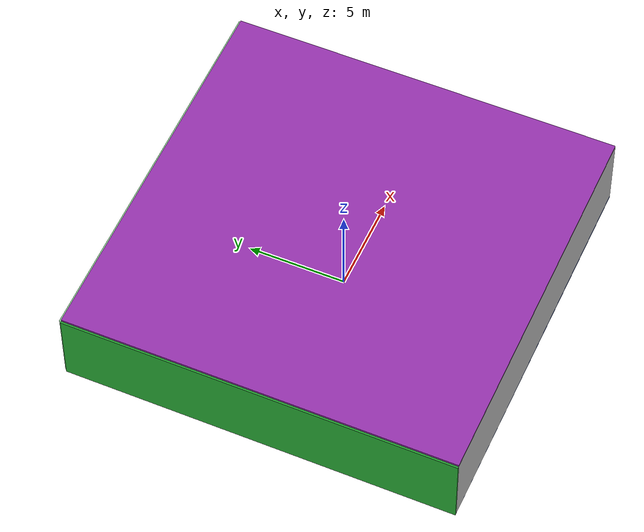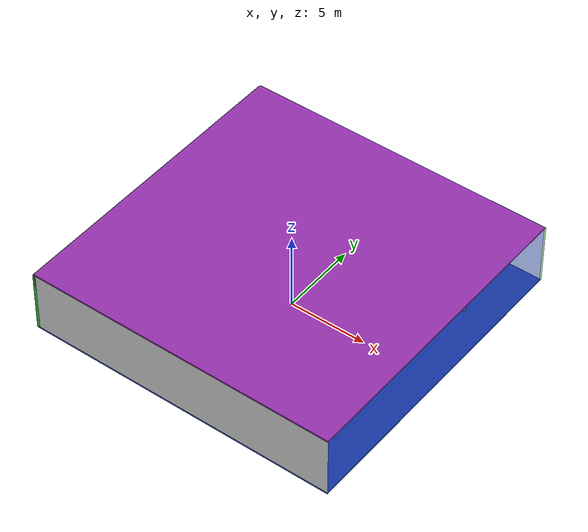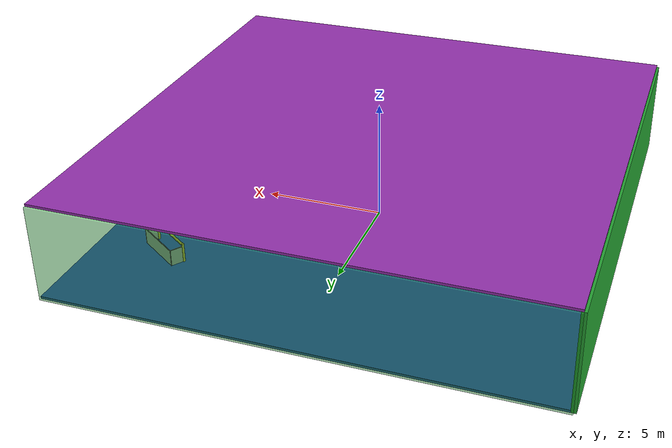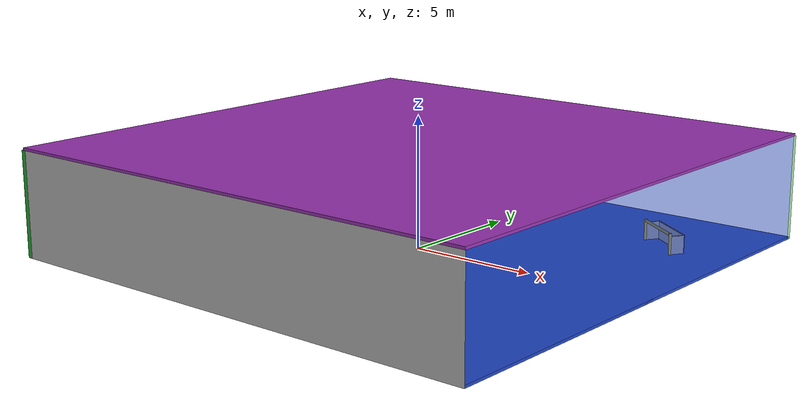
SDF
<sdf version="1.4">
 <world name="default">
  <physics type="ode">
   <max_step_size>0.001</max_step_size>
   <real_time_factor>1</real_time_factor>
   <real_time_update_rate>1000</real_time_update_rate>
   <gravity>0 0 -9.8</gravity>
  </physics>
  <scene><ambient>0.4 0.4 0.4 1</ambient><background>0.7 0.7 0.7 1</background><shadows>1</shadows></scene>
  <model name="Surrounding">
   <static>1</static>
   <link name="Ceiling">
    <collision name="Ceiling_Collision"><geometry><box><size>20 20 0.1</size></box></geometry></collision>
    <visual name="Ceiling_Visual">
     <geometry><box><size>20 20 0.1</size></box></geometry>
     <material>
      <script><uri>file://media/materials/scripts/gazebo.material</uri><name>Gazebo/Purple</name></script>
     </material>
    </visual>
    <pose>0 0 4.05 0 0 0</pose>
   </link>
   <link name="Wall_South">
    <collision name="Wall_South_Collision">
     <geometry><box><size>20 0 4</size></box></geometry>
     <pose>0 0 2 0 -0 0</pose>
    </collision>
    <visual name="Wall_South_Visual">
     <pose>0 0 2 0 -0 0</pose>
     <geometry><box><size>20 0 4</size></box></geometry>
     <material>
      <script><uri>file://media/materials/scripts/gazebo.material</uri><name>Gazebo/PioneerBody</name></script>
     </material>
    </visual>
    <velocity_decay><linear>0</linear><angular>0</angular></velocity_decay>
    <pose>0 -10 0 0 -0 0</pose>
   </link>
   <link name="Wall_East">
    <collision name="Wall_21_Collision">
     <geometry><box><size>20 0 4</size></box></geometry>
     <pose>0 0 2 0 -0 0</pose>
    </collision>
    <visual name="Wall_21_Visual">
     <pose>0 0 2 0 -0 0</pose>
     <geometry><box><size>20 0 4</size></box></geometry>
     <material>
      <script><uri>file://media/materials/scripts/gazebo.material</uri><name>Gazebo/BlueTransparent</name></script>
     </material>
    </visual>
    <velocity_decay><linear>0</linear><angular>0</angular></velocity_decay>
    <pose>10 0 0 0 -0 1.5708</pose>
   </link>
   <link name="Wall_North">
    <collision name="Wall_22_Collision">
     <geometry><box><size>20 0.2 4</size></box></geometry>
     <pose>0 0 2 0 -0 0</pose>
    </collision>
    <visual name="Wall_22_Visual">
     <pose>0 0 2 0 -0 0</pose>
     <geometry><box><size>20 0.2 4</size></box></geometry>
     <material>
      <script><uri>file://media/materials/scripts/gazebo.material</uri><name>Gazebo/GreenTransparent</name></script>
     </material>
    </visual>
    <velocity_decay><linear>0</linear><angular>0</angular></velocity_decay>
    <pose>0 10 0 0 -0 0</pose>
   </link>
   <link name="Wall_West">
    <collision name="Wall_23_Collision">
     <geometry><box><size>20 0.2 4</size></box></geometry>
     <pose>0 0 2 0 -0 0</pose>
    </collision>
    <visual name="Wall_23_Visual">
     <pose>0 0 2 0 -0 0</pose>
     <geometry><box><size>20 0.2 4</size></box></geometry>
     <material>
      <script><uri>file://media/materials/scripts/gazebo.material</uri><name>Gazebo/GreenGlow</name></script>
     </material>
    </visual>
    <velocity_decay><linear>0</linear><angular>0</angular></velocity_decay>
    <pose>-10 0 0 0 0 -1.5708</pose>
   </link>
   <link name="Ground_link">
    <collision name="collision">
     <pose>0 0 .05 0 -0 0</pose>
     <geometry><box><size>20 20 0.1</size></box></geometry>
    </collision>
    <visual name="visual">
     <pose>0 0 .05 0 -0 0</pose>
     <geometry><box><size>20 20 0.1</size></box></geometry>
     <material>
      <script><uri>file://media/materials/scripts/gazebo.material</uri><name>Gazebo/BlueLaser</name></script>
     </material>
    </visual>
   </link>
   <static>1</static>
  </model>
  <spherical_coordinates>
   <surface_model>EARTH_WGS84</surface_model>
   <latitude_deg>0</latitude_deg>
   <longitude_deg>0</longitude_deg>
   <elevation>0</elevation>
   <heading_deg>0</heading_deg>
  </spherical_coordinates>
  <light name="lightball_0" type="diffuse">
   <diffuse>0.8 0.8 0.8 1</diffuse>
   <specular>0.2 0.2 0.2 1</specular>
   <attenuation>
    <range>100</range>
    <constant>0.7</constant>
    <linear>0.01</linear>
    <quadratic>0.001</quadratic>
   </attenuation>
   <direction>-0.5 0.1 -0.9</direction>
   <pose>-1.05491301351 -4.36332999708 3.03607443915 0 0 0</pose>
  </light>
  <light name="lightball_1" type="diffuse">
   <diffuse>0.8 0.8 0.8 1</diffuse>
   <specular>0.2 0.2 0.2 1</specular>
   <attenuation>
    <range>100</range>
    <constant>0.7</constant>
    <linear>0.01</linear>
    <quadratic>0.001</quadratic>
   </attenuation>
   <direction>-0.5 0.1 -0.9</direction>
   <pose>9.42565446986 0.0867105663632 2.93505710169 0 0 0</pose>
  </light>
  <light name="lightball_2" type="diffuse">
   <diffuse>0.8 0.8 0.8 1</diffuse>
   <specular>0.2 0.2 0.2 1</specular>
   <attenuation>
    <range>100</range>
    <constant>0.7</constant>
    <linear>0.01</linear>
    <quadratic>0.001</quadratic>
   </attenuation>
   <direction>-0.5 0.1 -0.9</direction>
   <pose>-0.415542450699 9.38505556876 2.88094636102 0 0 0</pose>
  </light>
  <light name="lightball_3" type="diffuse">
   <diffuse>0.8 0.8 0.8 1</diffuse>
   <specular>0.2 0.2 0.2 1</specular>
   <attenuation>
    <range>100</range>
    <constant>0.7</constant>
    <linear>0.01</linear>
    <quadratic>0.001</quadratic>
   </attenuation>
   <direction>-0.5 0.1 -0.9</direction>
   <pose>-8.34994844312 -4.56124780661 3.27734079742 0 0 0</pose>
  </light>
  <light name="lightball_4" type="diffuse">
   <diffuse>0.8 0.8 0.8 1</diffuse>
   <specular>0.2 0.2 0.2 1</specular>
   <attenuation>
    <range>100</range>
    <constant>0.7</constant>
    <linear>0.01</linear>
    <quadratic>0.001</quadratic>
   </attenuation>
   <direction>-0.5 0.1 -0.9</direction>
   <pose>7.19471076859 0.406069850357 3.56677440964 0 0 0</pose>
  </light>
  <light name="lightball_5" type="diffuse">
   <diffuse>0.8 0.8 0.8 1</diffuse>
   <specular>0.2 0.2 0.2 1</specular>
   <attenuation>
    <range>100</range>
    <constant>0.7</constant>
    <linear>0.01</linear>
    <quadratic>0.001</quadratic>
   </attenuation>
   <direction>-0.5 0.1 -0.9</direction>
   <pose>-4.15701497681 0.696146353845 1.41620727676 0 0 0</pose>
  </light>
  <light name="lightball_6" type="diffuse">
   <diffuse>0.8 0.8 0.8 1</diffuse>
   <specular>0.2 0.2 0.2 1</specular>
   <attenuation>
    <range>100</range>
    <constant>0.7</constant>
    <linear>0.01</linear>
    <quadratic>0.001</quadratic>
   </attenuation>
   <direction>-0.5 0.1 -0.9</direction>
   <pose>7.74930645655 -0.503334508727 2.81670226418 0 0 0</pose>
  </light>
  <light name="lightball_7" type="diffuse">
   <diffuse>0.8 0.8 0.8 1</diffuse>
   <specular>0.2 0.2 0.2 1</specular>
   <attenuation>
    <range>100</range>
    <constant>0.7</constant>
    <linear>0.01</linear>
    <quadratic>0.001</quadratic>
   </attenuation>
   <direction>-0.5 0.1 -0.9</direction>
   <pose>1.84684799067 6.79118439833 1.5396006195 0 0 0</pose>
  </light>
  <light name="lightball_8" type="diffuse">
   <diffuse>0.8 0.8 0.8 1</diffuse>
   <specular>0.2 0.2 0.2 1</specular>
   <attenuation>
    <range>100</range>
    <constant>0.7</constant>
    <linear>0.01</linear>
    <quadratic>0.001</quadratic>
   </attenuation>
   <direction>-0.5 0.1 -0.9</direction>
   <pose>-3.23985875895 2.76245682741 1.13386363926 0 0 0</pose>
  </light>
  <light name="lightball_9" type="diffuse">
   <diffuse>0.8 0.8 0.8 1</diffuse>
   <specular>0.2 0.2 0.2 1</specular>
   <attenuation>
    <range>100</range>
    <constant>0.7</constant>
    <linear>0.01</linear>
    <quadratic>0.001</quadratic>
   </attenuation>
   <direction>-0.5 0.1 -0.9</direction>
   <pose>-0.883673890085 5.11218115072 3.29289943812 0 0 0</pose>
  </light>
  <light name="lightball_10" type="diffuse">
   <diffuse>0.8 0.8 0.8 1</diffuse>
   <specular>0.2 0.2 0.2 1</specular>
   <attenuation>
    <range>100</range>
    <constant>0.7</constant>
    <linear>0.01</linear>
    <quadratic>0.001</quadratic>
   </attenuation>
   <direction>-0.5 0.1 -0.9</direction>
   <pose>-5.92962552947 -5.73674652023 1.01940005641 0 0 0</pose>
  </light>
  <light name="lightball_11" type="diffuse">
   <diffuse>0.8 0.8 0.8 1</diffuse>
   <specular>0.2 0.2 0.2 1</specular>
   <attenuation>
    <range>100</range>
    <constant>0.7</constant>
    <linear>0.01</linear>
    <quadratic>0.001</quadratic>
   </attenuation>
   <direction>-0.5 0.1 -0.9</direction>
   <pose>-5.61560517451 -3.14220357891 1.87741495871 0 0 0</pose>
  </light>
  <light name="lightball_12" type="diffuse">
   <diffuse>0.8 0.8 0.8 1</diffuse>
   <specular>0.2 0.2 0.2 1</specular>
   <attenuation>
    <range>100</range>
    <constant>0.7</constant>
    <linear>0.01</linear>
    <quadratic>0.001</quadratic>
   </attenuation>
   <direction>-0.5 0.1 -0.9</direction>
   <pose>5.07249211117 7.62304086843 0.648544751383 0 0 0</pose>
  </light>
  <include><uri>model://table</uri><pose>-3.34029477775 -7.99442366901 0 0 0 2.92592597797</pose></include>
  <include>
   <uri>model://robocup_3Dsim_goal</uri>
   <pose>-0.437818647753 -1.72264021921 0 0 0 1.31414147409</pose>
  </include>
  <include>
   <uri>model://textured_shapes</uri>
   <pose>2.67266241131 -6.35169127169 0 0 0 1.37059299374</pose>
  </include>
  <include>
   <uri>model://robocup_3Dsim_goal</uri>
   <pose>6.89947129065 5.53816022821 0 0 0 0.97305390736</pose>
  </include>
 </world>
</sdf>

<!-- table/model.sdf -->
<sdf version="1.5">
  <model name="table">
    <static>true</static>
    <link name="link">
      <collision name="surface">
        <pose>0 0 1.0 0 0 0</pose>
        <geometry>
          <box>
            <size>1.5 0.8 0.03</size>
          </box>
        </geometry>
        <surface>
          <friction>
            <ode>
              <mu>0.6</mu>
              <mu2>0.6</mu2>
            </ode>
          </friction>
        </surface>
      </collision>
      <visual name="visual1">
        <pose>0 0 1.0 0 0 0</pose>
        <geometry>
          <box>
            <size>1.5 0.8 0.03</size>
          </box>
        </geometry>
        <material>
          <script>
            <uri>model://media/materials/scripts/gazebo.material</uri>
            <name>Gazebo/Wood</name>
          </script>
        </material>
      </visual>
      <collision name="front_left_leg">
        <pose>0.68 0.38 0.5 0 0 0</pose>
        <geometry>
          <cylinder>
            <radius>0.02</radius>
            <length>1.0</length>
          </cylinder>
        </geometry>
      </collision>
      <visual name="front_left_leg">
        <pose>0.68 0.38 0.5 0 0 0</pose>
        <geometry>
          <cylinder>
            <radius>0.02</radius>
            <length>1.0</length>
          </cylinder>
        </geometry>
        <material>
          <script>
            <uri>model://media/materials/scripts/gazebo.material</uri>
            <name>Gazebo/Grey</name>
          </script>
        </material>
      </visual>
      <collision name="front_right_leg">
        <pose>0.68 -0.38 0.5 0 0 0</pose>
        <geometry>
          <cylinder>
            <radius>0.02</radius>
            <length>1.0</length>
          </cylinder>
        </geometry>
      </collision>
      <visual name="front_right_leg">
        <pose>0.68 -0.38 0.5 0 0 0</pose>
        <geometry>
          <cylinder>
            <radius>0.02</radius>
            <length>1.0</length>
          </cylinder>
        </geometry>
        <material>
          <script>
            <uri>model://media/materials/scripts/gazebo.material</uri>
            <name>Gazebo/Grey</name>
          </script>
        </material>
      </visual>
      <collision name="back_right_leg">
        <pose>-0.68 -0.38 0.5 0 0 0</pose>
        <geometry>
          <cylinder>
            <radius>0.02</radius>
            <length>1.0</length>
          </cylinder>
        </geometry>
      </collision>
      <visual name="back_right_leg">
        <pose>-0.68 -0.38 0.5 0 0 0</pose>
        <geometry>
          <cylinder>
            <radius>0.02</radius>
            <length>1.0</length>
          </cylinder>
        </geometry>
        <material>
          <script>
            <uri>model://media/materials/scripts/gazebo.material</uri>
            <name>Gazebo/Grey</name>
          </script>
        </material>
      </visual>
      <collision name="back_left_leg">
        <pose>-0.68 0.38 0.5 0 0 0</pose>
        <geometry>
          <cylinder>
            <radius>0.02</radius>
            <length>1.0</length>
          </cylinder>
        </geometry>
      </collision>
      <visual name="back_left_leg">
        <pose>-0.68 0.38 0.5 0 0 0</pose>
        <geometry>
          <cylinder>
            <radius>0.02</radius>
            <length>1.0</length>
          </cylinder>
        </geometry>
        <material>
          <script>
            <uri>model://media/materials/scripts/gazebo.material</uri>
            <name>Gazebo/Grey</name>
          </script>
        </material>
      </visual>
    </link>
  </model>
</sdf>

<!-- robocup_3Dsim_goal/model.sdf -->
<sdf version="1.5">
  <model name="robocup_3d_goal">
    <static>true</static>
    <link name="left_post">
      <pose>0 1.05 0.45 0 0 0</pose>
      <collision name="collision">
        <geometry>
          <cylinder>
            <radius>0.05</radius>
            <length>0.9</length>
          </cylinder>
        </geometry>
      </collision>
      <visual name="visual">
        <geometry>
          <cylinder>
            <radius>0.05</radius>
            <length>0.9</length>
          </cylinder>
        </geometry>
        <material>
          <script>
            <uri>file://media/materials/scripts/gazebo.material</uri>
            <name>Gazebo/ZincYellow</name>
          </script>
        </material>
      </visual>
    </link>
    <link name="left_support_horiz_lower">
      <pose>0.30 1.05 0.01 0 0 0</pose>
      <collision name="collision">
        <geometry>
          <box>
            <size>0.50 0.02 0.02</size>
          </box>
        </geometry>
      </collision>
      <visual name="visual">
        <geometry>
          <box>
            <size>0.50 0.02 0.02</size>
          </box>
        </geometry>
        <material>
          <script>
            <uri>file://media/materials/scripts/gazebo.material</uri>
            <name>Gazebo/White</name>
          </script>
        </material>
      </visual>
    </link>
    <link name="left_support_horiz_upper">
      <pose>0.30 1.05 0.79 0 0 0</pose>
      <collision name="collision">
        <geometry>
          <box>
            <size>0.50 0.02 0.02</size>
          </box>
        </geometry>
      </collision>
      <visual name="visual">
        <geometry>
          <box>
            <size>0.50 0.02 0.02</size>
          </box>
        </geometry>
        <material>
          <script>
            <uri>file://media/materials/scripts/gazebo.material</uri>
            <name>Gazebo/White</name>
          </script>
        </material>
      </visual>
    </link>
    <link name="left_support_vertical">
      <pose>0.56 1.05 0.4 0 1.5708 0</pose>
      <collision name="collision">
        <geometry>
          <box>
            <size>0.80 0.02 0.02</size>
          </box>
        </geometry>
      </collision>
      <visual name="visual">
        <geometry>
          <box>
            <size>0.80 0.02 0.02</size>
          </box>
        </geometry>
        <material>
          <script>
            <uri>file://media/materials/scripts/gazebo.material</uri>
            <name>Gazebo/White</name>
          </script>
        </material>
      </visual>
    </link>
    <link name="right_support_horiz_lower">
      <pose>0.30 -1.05 0.01 0 0 0</pose>
      <collision name="collision">
        <geometry>
          <box>
            <size>0.50 0.02 0.02</size>
          </box>
        </geometry>
      </collision>
      <visual name="visual">
        <geometry>
          <box>
            <size>0.50 0.02 0.02</size>
          </box>
        </geometry>
        <material>
          <script>
            <uri>file://media/materials/scripts/gazebo.material</uri>
            <name>Gazebo/White</name>
          </script>
        </material>
      </visual>
    </link>
    <link name="right_support_horiz_upper">
      <pose>0.30 -1.05 0.79 0 0 0</pose>
      <collision name="collision">
        <geometry>
          <box>
            <size>0.50 0.02 0.02</size>
          </box>
        </geometry>
      </collision>
      <visual name="visual">
        <geometry>
          <box>
            <size>0.50 0.02 0.02</size>
          </box>
        </geometry>
        <material>
          <script>
            <uri>file://media/materials/scripts/gazebo.material</uri>
            <name>Gazebo/White</name>
          </script>
        </material>
      </visual>
    </link>
    <link name="right_support_vertical">
      <pose>0.56 -1.05 0.4 0 1.5708 0</pose>
      <collision name="collision">
        <geometry>
          <box>
            <size>0.80 0.02 0.02</size>
          </box>
        </geometry>
      </collision>
      <visual name="visual">
        <geometry>
          <box>
            <size>0.80 0.02 0.02</size>
          </box>
        </geometry>
        <material>
          <script>
            <uri>file://media/materials/scripts/gazebo.material</uri>
            <name>Gazebo/White</name>
          </script>
        </material>
      </visual>
    </link>
    <link name="center_support_horiz_lower">
      <pose>0.56 0 0.01 0 1.5708 0</pose>
      <collision name="collision">
        <geometry>
          <box>
            <size>0.02 2.08 0.02</size>
          </box>
        </geometry>
      </collision>
      <visual name="visual">
        <geometry>
          <box>
            <size>0.02 2.08 0.02</size>
          </box>
        </geometry>
        <material>
          <script>
            <uri>file://media/materials/scripts/gazebo.material</uri>
            <name>Gazebo/White</name>
          </script>
        </material>
      </visual>
    </link>
    <link name="center_support_horiz_upper">
      <pose>0.56 0 0.79 0 1.5708 0</pose>
      <collision name="collision">
        <geometry>
          <box>
            <size>0.02 2.08 0.02</size>
          </box>
        </geometry>
      </collision>
      <visual name="visual">
        <geometry>
          <box>
            <size>0.02 2.08 0.02</size>
          </box>
        </geometry>
        <material>
          <script>
            <uri>file://media/materials/scripts/gazebo.material</uri>
            <name>Gazebo/White</name>
          </script>
        </material>
      </visual>
    </link>
    <link name="right_post">
      <pose>0 -1.05 0.45 0 0 0</pose>
      <collision name="collision">
        <geometry>
          <cylinder>
            <radius>0.05</radius>
            <length>0.9</length>
          </cylinder>
        </geometry>
      </collision>
      <visual name="visual">
        <geometry>
          <cylinder>
            <radius>0.05</radius>
            <length>0.9</length>
          </cylinder>
        </geometry>
        <material>
          <script>
            <uri>file://media/materials/scripts/gazebo.material</uri>
            <name>Gazebo/ZincYellow</name>
          </script>
        </material>
      </visual>
    </link>
    <link name="crossbar">
      <pose>0 0 0.85 1.57 1.57 0</pose>
      <collision name="collision">
        <geometry>
          <cylinder>
            <radius>0.05</radius>
            <length>2.0</length>
          </cylinder>
        </geometry>
      </collision>
      <visual name="visual">
        <geometry>
          <cylinder>
            <radius>0.05</radius>
            <length>2.0</length>
          </cylinder>
        </geometry>
        <material>
          <script>
            <uri>file://media/materials/scripts/gazebo.material</uri>
            <name>Gazebo/ZincYellow</name>
          </script>
        </material>
      </visual>
    </link>
    <link name="center_net">
      <pose>0.56 0 0.40 0 0 0</pose>
      <collision name="collision">
        <geometry>
          <box>
            <size>0.01 2.1 0.80</size>
          </box>
        </geometry>
      </collision>
      <visual name="visual">
        <geometry>
          <box>
            <size>0.01 2.1 0.80</size>
          </box>
        </geometry>
        <material>
          <script>
            <uri>model://../model_source/models/robocup09_spl_field/materials/scripts/</uri>
            <uri>model://../model_source/models/robocup09_spl_field/materials/textures/</uri>
            <name>RoboCup/Net</name>
          </script>
        </material>
      </visual>
    </link>
    <link name="left_net">
      <pose>0.30 1.05 0.40 0 0 0</pose>
      <collision name="collision">
        <geometry>
          <box>
            <size>0.50 0.01 0.76</size>
          </box>
        </geometry>
      </collision>
      <visual name="visual">
        <geometry>
          <box>
            <size>0.50 0.01 0.76</size>
          </box>
        </geometry>
        <material>
          <script>
            <uri>model://../model_source/models/robocup09_spl_field/materials/scripts/</uri>
            <uri>model://../model_source/models/robocup09_spl_field/materials/textures/</uri>
            <name>RoboCup/Net</name>
          </script>
        </material>
      </visual>
    </link>
    <link name="right_net">
      <pose>0.30 -1.05 0.40 0 0 0</pose>
      <collision name="collision">
        <geometry>
          <box>
            <size>0.50 0.01 0.76</size>
          </box>
        </geometry>
      </collision>
      <visual name="visual">
        <geometry>
          <box>
            <size>0.50 0.01 0.76</size>
          </box>
        </geometry>
        <material>
          <script>
            <uri>model://../model_source/models/robocup09_spl_field/materials/scripts/</uri>
            <uri>model://../model_source/models/robocup09_spl_field/materials/textures/</uri>
            <name>RoboCup/Net</name>
          </script>
        </material>
      </visual>
    </link>
  </model>
</sdf>

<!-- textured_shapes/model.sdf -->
<sdf version="1.6">
  <model name="textured_shapes">
    <pose>0 0 0.5 0 0 0</pose>
    <link name="box">
      <pose>0 -1.5 0 0 0 0</pose>
      <collision name="collision">
        <geometry>
          <box>
            <size>1 1 1</size>
          </box>
        </geometry>
      </collision>
      <visual name="visual">
        <geometry>
          <box>
            <size>1 1 1</size>
          </box>
        </geometry>
        <material>
          <script>
            <uri>model://../model_source/models/textured_shapes/materials/scripts</uri>
            <uri>model://../model_source/models/textured_shapes/materials/textures</uri>
            <name>TexturedShape/Squares</name>
          </script>
        </material>
      </visual>
    </link>
    <link name="sphere">
      <collision name="collision">
        <geometry>
          <sphere>
            <radius>0.5</radius>
          </sphere>
        </geometry>
      </collision>
      <visual name="visual">
        <geometry>
          <sphere>
            <radius>0.5</radius>
          </sphere>
        </geometry>
        <material>
          <script>
            <uri>model://../model_source/models/textured_shapes/materials/scripts</uri>
            <uri>model://../model_source/models/textured_shapes/materials/textures</uri>
            <name>TexturedShape/Squares</name>
          </script>
        </material>
      </visual>
    </link>
    <link name="cylinder">
      <pose>0 1.5 0 0 0 0</pose>
      <collision name="collision">
        <geometry>
          <cylinder>
            <radius>0.5</radius>
            <length>1</length>
          </cylinder>
        </geometry>
      </collision>
      <visual name="visual">
        <geometry>
          <cylinder>
            <radius>0.5</radius>
            <length>1</length>
          </cylinder>
        </geometry>
        <material>
          <script>
            <uri>model://../model_source/models/textured_shapes/materials/scripts</uri>
            <uri>model://../model_source/models/textured_shapes/materials/textures</uri>
            <name>TexturedShape/Squares</name>
          </script>
        </material>
      </visual>
    </link>
  </model>
</sdf>
